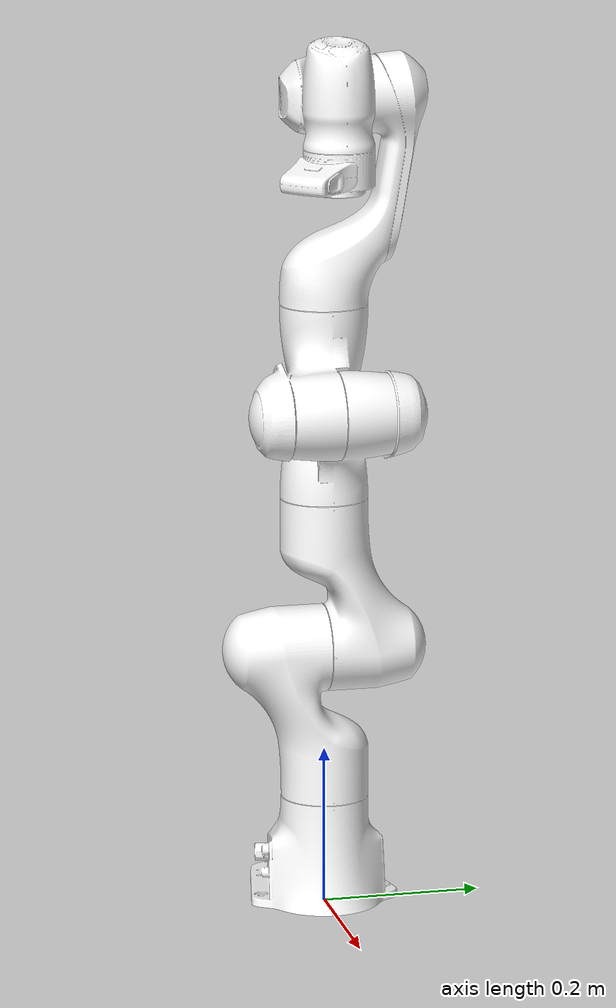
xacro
<?xml version='1.0' encoding='utf-8'?>
<robot xmlns:xacro="http://www.ros.org/wiki/xacro" name="panda">

	<xacro:arg name="gazebo" default="true"/>
	<xacro:arg name="effort_interface" default="false"/>
	<xacro:arg name="position_interface" default="false"/>

  <xacro:include filename="$(find franka_gazebo_moveit)/robots/panda_arm.xacro" >
  	<xacro:arg name="gazebo" value="${gazebo}"/>
  	<xacro:arg name="effort_interface" value="${effort_interface}"/>
  	<xacro:arg name="position_interface" value="${position_interface}"/>
  </xacro:include>

  <xacro:panda_arm connected_to='world'/>

</robot>

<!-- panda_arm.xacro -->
<robot xmlns:xacro="http://www.ros.org/wiki/xacro" name="panda">
  <xacro:macro name="panda_arm" params="arm_id:='panda' package_name:='franka_gazebo_moveit' connected_to:='' xyz:='0 0 0' rpy:='0 0 0'">
    <xacro:unless value="${not connected_to}">
      <link name="${connected_to}"/>
      <joint name="${arm_id}_joint_${connected_to}" type="fixed">
        <parent link="${connected_to}"/>
        <child link="${arm_id}_link0"/>
        <origin rpy="${rpy}" xyz="${xyz}"/>
      </joint>
    </xacro:unless>

    <xacro:arg name="gazebo" default="true"/>
    <xacro:arg name="effort_interface" default="false"/>
    <xacro:arg name="position_interface" default="false"/>
    <xacro:if value="$(arg gazebo)">
      <xacro:if value="$(arg effort_interface)">
        <xacro:include filename="$(find franka_gazebo_moveit)/robots/panda_arm_effort.gazebo.xacro"/>
      </xacro:if>
      <xacro:if value="$(arg position_interface)">
        <xacro:include filename="$(find franka_gazebo_moveit)/robots/panda_arm_position.gazebo.xacro"/>
      </xacro:if>
      <!-- Gazebo Tags -->
    </xacro:if>

    <link name="${arm_id}_link0">
      <inertial>
        <mass value="2.92" />
        <origin xyz="-0.025566 -2.88e-05 0.057332" rpy="0 0 0" />
        <inertia ixx="0.1" ixy="0.0" ixz="0.0" iyy="0.1" iyz="0.0" izz="0.1"/>

      </inertial>
      <visual>
        <origin xyz="${xyz}" rpy="${rpy}"/>
        <geometry>
          <mesh filename="package://${package_name}/meshes/visual-no-trans/link0.dae"/>
        </geometry>
        <material name="">
          <color rgba="1 1 1 1"/>
        </material>
      </visual>
      <collision>
        <origin xyz="${xyz}" rpy="${rpy}"/>
        <geometry>
          <mesh filename="package://${package_name}/meshes/collision/link0.stl"/>
        </geometry>
      </collision>
    </link>

    <link name="${arm_id}_link1">
      <inertial>
        <mass value="2.74" />
        <origin xyz="0 -0.0324958 -0.0675818" rpy="0 0 0" />
        <inertia ixx="0.1" ixy="0.0" ixz="0.0" iyy="0.1" iyz="0.0" izz="0.1"/>

      </inertial>
      <visual>
        <origin xyz="${xyz}" rpy="${rpy}"/>
        <geometry>
          <mesh filename="package://${package_name}/meshes/visual-no-trans/link1.dae"/>
        </geometry>
        <material name="">
          <color rgba="1 1 1 1"/>
        </material>
      </visual>
      <collision>
        <origin xyz="${xyz}" rpy="${rpy}"/>
        <geometry>
          <mesh filename="package://${package_name}/meshes/collision/link1.stl"/>
        </geometry>
      </collision>
    </link>

    <joint name="${arm_id}_joint1" type="revolute">
      <safety_controller k_position="100.0" k_velocity="40.0" soft_lower_limit="-2.8973" soft_upper_limit="2.8973"/>
      <origin rpy="0 0 0" xyz="0 0 0.333"/>
      <parent link="${arm_id}_link0"/>
      <child link="${arm_id}_link1"/>
      <axis xyz="0 0 1"/>
      <limit effort="87" lower="-2.8973" upper="2.8973" velocity="2.1750"/>
    </joint>

    <link name="${arm_id}_link2">
      <inertial>
        <mass value="2.74" />
        <origin xyz="0 -0.06861 0.0322285" rpy="0 0 0" />
        <inertia ixx="0.1" ixy="0.0" ixz="0.0" iyy="0.1" iyz="0.0" izz="0.1"/>

      </inertial>
      <visual>
        <origin xyz="${xyz}" rpy="${rpy}"/>
        <geometry>
          <mesh filename="package://${package_name}/meshes/visual-no-trans/link2.dae"/>
        </geometry>
        <material name="">
          <color rgba="1 1 1 1"/>
        </material>
      </visual>
      <collision>
        <origin xyz="${xyz}" rpy="${rpy}"/>
        <geometry>
          <mesh filename="package://${package_name}/meshes/collision/link2.stl"/>
        </geometry>
      </collision>
    </link>

    <joint name="${arm_id}_joint2" type="revolute">
      <safety_controller k_position="100.0" k_velocity="40.0" soft_lower_limit="-1.7628" soft_upper_limit="1.7628"/>
      <origin rpy="${-pi/2} 0 0" xyz="0 0 0"/>
      <parent link="${arm_id}_link1"/>
      <child link="${arm_id}_link2"/>
      <axis xyz="0 0 1"/>
      <limit effort="87" lower="-1.7628" upper="1.7628" velocity="2.1750"/>
    </joint>

    <link name="${arm_id}_link3">
      <inertial>
        <mass value="2.38" />
        <origin xyz="0.0469893 0.0316374 -0.031704" rpy="0 0 0" />
        <inertia ixx="0.1" ixy="0.0" ixz="0.0" iyy="0.1" iyz="0.0" izz="0.1"/>

      </inertial>
      <visual>
        <origin xyz="${xyz}" rpy="${rpy}"/>
        <geometry>
          <mesh filename="package://${package_name}/meshes/visual-no-trans/link3.dae"/>
        </geometry>
        <material name="">
          <color rgba="1 1 1 1"/>
        </material>
      </visual>
      <collision>
        <origin xyz="${xyz}" rpy="${rpy}"/>
        <geometry>
          <mesh filename="package://${package_name}/meshes/collision/link3.stl"/>
        </geometry>
      </collision>
    </link>

    <joint name="${arm_id}_joint3" type="revolute">
      <safety_controller k_position="100.0" k_velocity="40.0" soft_lower_limit="-2.8973" soft_upper_limit="2.8973"/>
      <origin rpy="${pi/2} 0 0" xyz="0 -0.316 0"/>
      <parent link="${arm_id}_link2"/>
      <child link="${arm_id}_link3"/>
      <axis xyz="0 0 1"/>
      <limit effort="87" lower="-2.8973" upper="2.8973" velocity="2.1750"/>
    </joint>

    <link name="${arm_id}_link4">
      <inertial>
        <mass value="2.38" />
        <origin xyz="-0.0360446 0.0336853 0.031882" rpy="0 0 0" />
        <inertia ixx="0.1" ixy="0.0" ixz="0.0" iyy="0.1" iyz="0.0" izz="0.1"/>

      </inertial>
      <visual>
        <origin xyz="${xyz}" rpy="${rpy}"/>
        <geometry>
          <mesh filename="package://${package_name}/meshes/visual-no-trans/link4.dae"/>
        </geometry>
        <material name="">
          <color rgba="1 1 1 1"/>
        </material>
      </visual>
      <collision>
        <origin xyz="${xyz}" rpy="${rpy}"/>
        <geometry>
          <mesh filename="package://${package_name}/meshes/collision/link4.stl"/>
        </geometry>
      </collision>
    </link>

    <joint name="${arm_id}_joint4" type="revolute">
      <safety_controller k_position="100.0" k_velocity="40.0" soft_lower_limit="-3.0718" soft_upper_limit="0.0698"/>
      <!-- soft_upper_limitr should be -0.0698, but that brakes simulation when initial position for this joint is 0.0 -->
      <origin rpy="${pi/2} 0 0" xyz="0.0825 0 0"/>
      <parent link="${arm_id}_link3"/>
      <child link="${arm_id}_link4"/>
      <axis xyz="0 0 1"/>
      <limit effort="87" lower="-3.0718" upper="0.0698" velocity="2.1750"/>
      <!-- upper should be -0.0698, but that brakes simulation when initial position for this joint is 0.0 -->
    </joint>

    <link name="${arm_id}_link5">
      <inertial>
        <mass value="2.74" />
        <origin xyz="0 0.0610427 -0.104176" rpy="0 0 0" />
        <inertia ixx="0.1" ixy="0.0" ixz="0.0" iyy="0.1" iyz="0.0" izz="0.1"/>
      </inertial>
      <visual>
        <origin xyz="${xyz}" rpy="${rpy}"/>
        <geometry>
          <mesh filename="package://${package_name}/meshes/visual-no-trans/link5.dae"/>
        </geometry>
        <material name="">
          <color rgba="1 1 1 1"/>
        </material>
      </visual>
      <collision>
        <origin xyz="${xyz}" rpy="${rpy}"/>
        <geometry>
          <mesh filename="package://${package_name}/meshes/collision/link5.stl"/>
        </geometry>
      </collision>
    </link>

    <joint name="${arm_id}_joint5" type="revolute">
      <safety_controller k_position="100.0" k_velocity="40.0" soft_lower_limit="-2.8973" soft_upper_limit="2.8973"/>
      <origin rpy="${-pi/2} 0 0" xyz="-0.0825 0.384 0"/>
      <parent link="${arm_id}_link4"/>
      <child link="${arm_id}_link5"/>
      <axis xyz="0 0 1"/>
      <limit effort="12" lower="-2.8973" upper="2.8973" velocity="2.6100"/>
    </joint>

    <link name="${arm_id}_link6">
      <inertial>
        <mass value="1.55" />
        <origin xyz="0.0510509 0.009108 0.0106343" rpy="0 0 0" />
        <inertia ixx="0.1" ixy="0.0" ixz="0.0" iyy="0.1" iyz="0.0" izz="0.1"/>
      </inertial>
      <visual>
        <origin xyz="${xyz}" rpy="${rpy}"/>
        <geometry>
          <mesh filename="package://${package_name}/meshes/visual-no-trans/link6.dae"/>
        </geometry>
        <material name="">
          <color rgba="1 1 1 1"/>
        </material>
      </visual>
      <collision>
        <origin xyz="${xyz}" rpy="${rpy}"/>
        <geometry>
          <mesh filename="package://${package_name}/meshes/collision/link6.stl"/>
        </geometry>
      </collision>
    </link>

    <joint name="${arm_id}_joint6" type="revolute">
      <safety_controller k_position="100.0" k_velocity="40.0" soft_lower_limit="-0.0175" soft_upper_limit="3.7525"/>
      <origin rpy="${pi/2} 0 0" xyz="0 0 0"/>
      <parent link="${arm_id}_link5"/>
      <child link="${arm_id}_link6"/>
      <axis xyz="0 0 1"/>
      <limit effort="12" lower="-0.0175" upper="3.7525" velocity="2.6100"/>
    </joint>

    <link name="${arm_id}_link7">
      <inertial>
        <mass value="0.54" />
        <origin xyz="0.0109695 0.0107965 0.0650411" rpy="0 0 0" />
        <inertia ixx="0.1" ixy="0.0" ixz="0.0" iyy="0.1" iyz="0.0" izz="0.1"/>
      </inertial>
      <visual>
        <origin xyz="${xyz}" rpy="${rpy}"/>
        <geometry>
          <mesh filename="package://${package_name}/meshes/visual-no-trans/link7.dae"/>
        </geometry>
        <material name="">
          <color rgba="1 1 1 1"/>
        </material>
      </visual>
      <collision>
        <origin xyz="${xyz}" rpy="${rpy}"/>
        <geometry>
          <mesh filename="package://${package_name}/meshes/collision/link7.stl"/>
        </geometry>
      </collision>
    </link>

    <joint name="${arm_id}_joint7" type="revolute">
      <safety_controller k_position="100.0" k_velocity="40.0" soft_lower_limit="-2.8973" soft_upper_limit="2.8973"/>
      <origin rpy="${pi/2} 0 0" xyz="0.088 0 0"/>
      <parent link="${arm_id}_link6"/>
      <child link="${arm_id}_link7"/>
      <axis xyz="0 0 1"/>
      <limit effort="12" lower="-2.8973" upper="2.8973" velocity="2.6100"/>
    </joint>

    <link name="${arm_id}_link8"/>

    <joint name="${arm_id}_joint8" type="fixed">
      <origin rpy="0 0 0" xyz="0 0 0.107"/>
      <parent link="${arm_id}_link7"/>
      <child link="${arm_id}_link8"/>
      <axis xyz="0 0 0"/>
    </joint>

    <!-- ros_control plugin -->
    <gazebo>
      <plugin name="gazebo_ros_control" filename="libgazebo_ros_control.so">
        <robotNamespace>/""</robotNamespace>
        <robotSimType>gazebo_ros_control/DefaultRobotHWSim</robotSimType>
      </plugin>
  </gazebo>

  </xacro:macro>
</robot>
